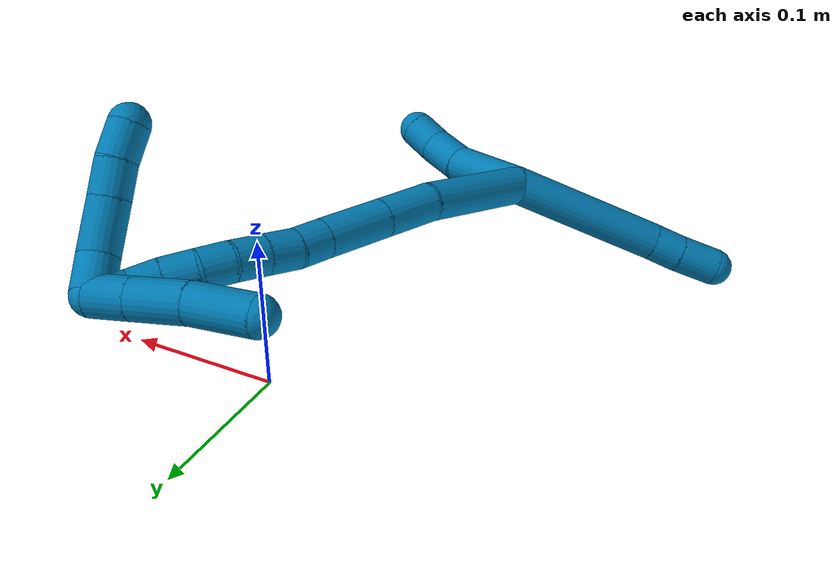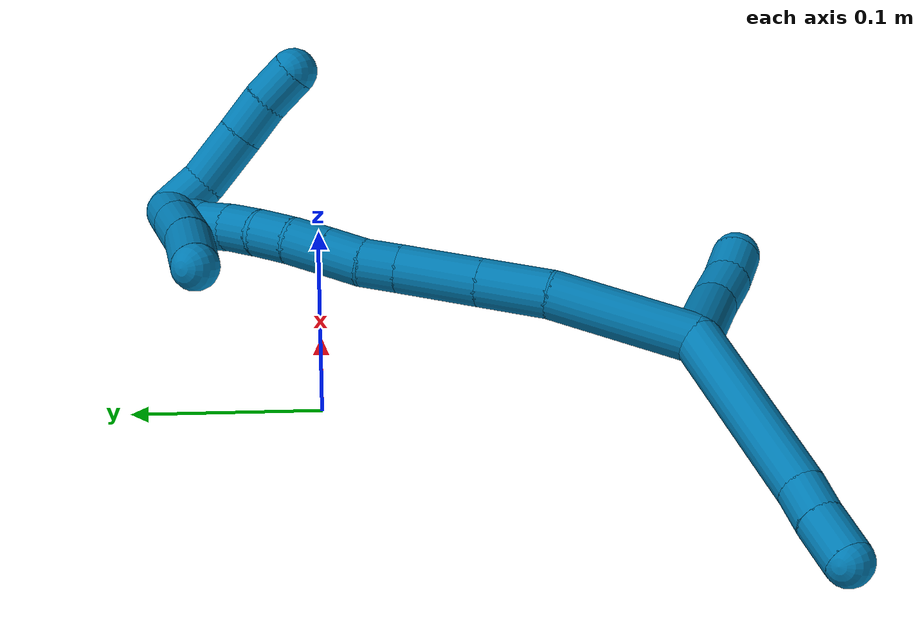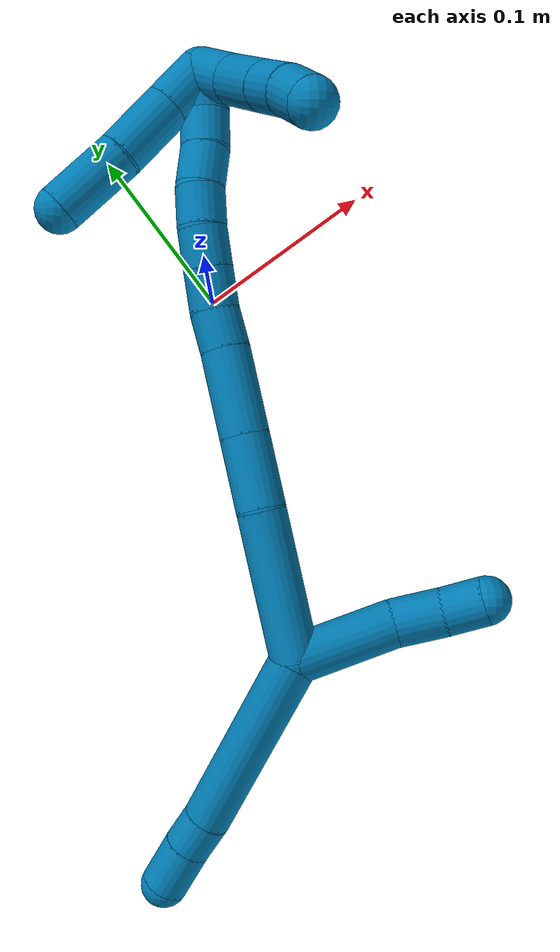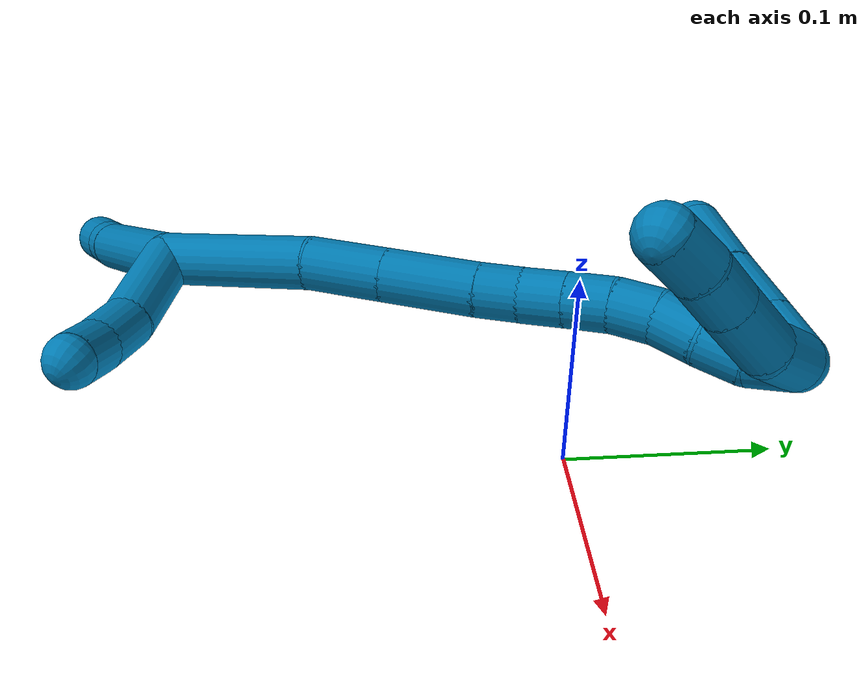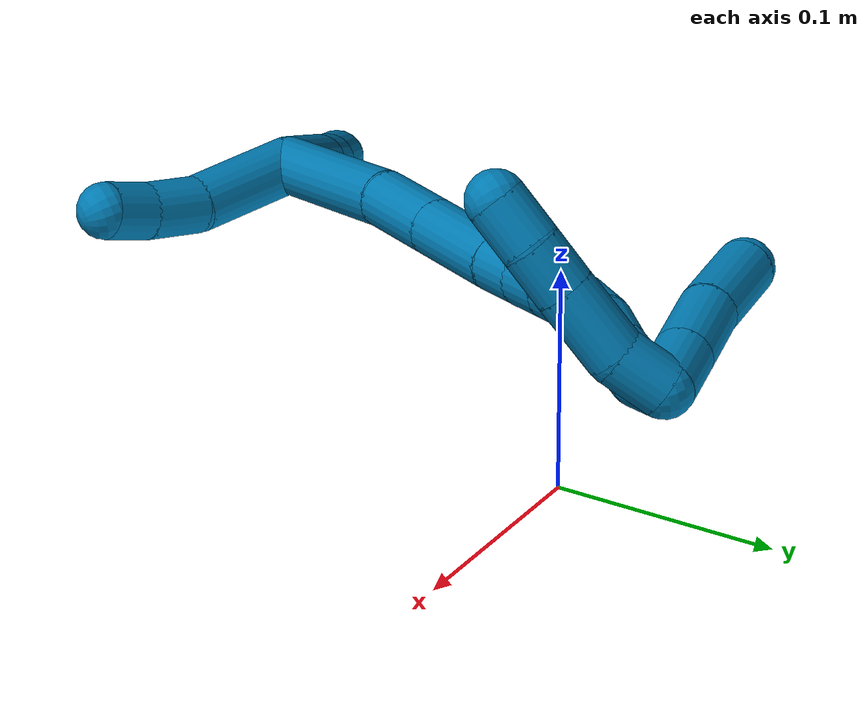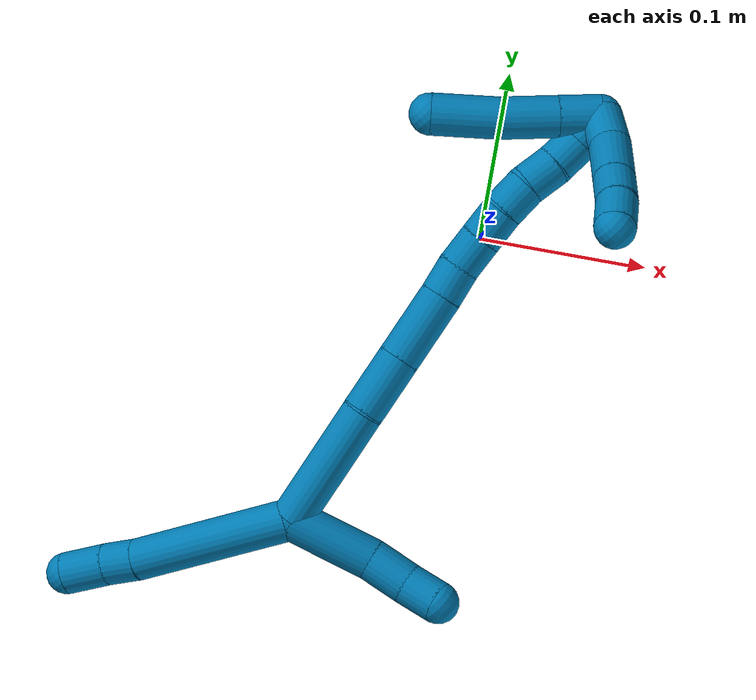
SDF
<sdf version="1.7">
 <world name="default">
  <model name="9">
   <static>0</static>
   <link name="9">
    <collision name="collision-cylinder-e_1_2_8">
     <pose>-0.037796 -0.028668 0.019702 0.968675 -0.82686 -0.453702</pose>
     <geometry><cylinder><radius>0.0125</radius><length>0.102734</length></cylinder></geometry>
     <surface>
      <friction><ode><mu>1.16</mu><mu2>1.16</mu2><slip1>0</slip1><slip2>0</slip2></ode></friction>
      <contact><ode><kp>1e+06</kp><kd>1</kd><max_vel>0</max_vel><min_depth>0.001</min_depth></ode></contact>
     </surface>
    </collision>
    <visual name="visual-cylinder-e_1_2_8">
     <pose>-0.037796 -0.028668 0.019702 0.968675 -0.82686 -0.453702</pose>
     <geometry><cylinder><radius>0.0125</radius><length>0.102734</length></cylinder></geometry>
     <material><ambient>0 0.490196 0.709804 1</ambient></material>
    </visual>
    <collision name="collision-cylinder-e_2_8_9">
     <pose>-0.082957 -0.062534 0.044068 0.839515 -0.811904 -0.379043</pose>
     <geometry><cylinder><radius>0.0125</radius><length>0.020299</length></cylinder></geometry>
     <surface>
      <friction><ode><mu>1.16</mu><mu2>1.16</mu2><slip1>0</slip1><slip2>0</slip2></ode></friction>
      <contact><ode><kp>1e+06</kp><kd>1</kd><max_vel>0</max_vel><min_depth>0.001</min_depth></ode></contact>
     </surface>
    </collision>
    <visual name="visual-cylinder-e_2_8_9">
     <pose>-0.082957 -0.062534 0.044068 0.839515 -0.811904 -0.379043</pose>
     <geometry><cylinder><radius>0.0125</radius><length>0.020299</length></cylinder></geometry>
     <material><ambient>0 0.490196 0.709804 1</ambient></material>
    </visual>
    <collision name="collision-cylinder-e_3_9_6">
     <pose>-0.09973 -0.0754 0.054605 0.917201 -0.772291 -0.396175</pose>
     <geometry><cylinder><radius>0.0125</radius><length>0.026967</length></cylinder></geometry>
     <surface>
      <friction><ode><mu>1.16</mu><mu2>1.16</mu2><slip1>0</slip1><slip2>0</slip2></ode></friction>
      <contact><ode><kp>1e+06</kp><kd>1</kd><max_vel>0</max_vel><min_depth>0.001</min_depth></ode></contact>
     </surface>
    </collision>
    <visual name="visual-cylinder-e_3_9_6">
     <pose>-0.09973 -0.0754 0.054605 0.917201 -0.772291 -0.396175</pose>
     <geometry><cylinder><radius>0.0125</radius><length>0.026967</length></cylinder></geometry>
     <material><ambient>0 0.490196 0.709804 1</ambient></material>
    </visual>
    <collision name="collision-cylinder-e_1_2_10">
     <pose>0.00643 0.005768 -0.024758 -2.9127 0.247746 -1.65063</pose>
     <geometry><cylinder><radius>0.0125</radius><length>0.052444</length></cylinder></geometry>
     <surface>
      <friction><ode><mu>1.16</mu><mu2>1.16</mu2><slip1>0</slip1><slip2>0</slip2></ode></friction>
      <contact><ode><kp>1e+06</kp><kd>1</kd><max_vel>0</max_vel><min_depth>0.001</min_depth></ode></contact>
     </surface>
    </collision>
    <visual name="visual-cylinder-e_1_2_10">
     <pose>0.00643 0.005768 -0.024758 -2.9127 0.247746 -1.65063</pose>
     <geometry><cylinder><radius>0.0125</radius><length>0.052444</length></cylinder></geometry>
     <material><ambient>0 0.490196 0.709804 1</ambient></material>
    </visual>
    <collision name="collision-cylinder-e_2_10_11">
     <pose>0.017912 0.012008 -0.061584 -3.10247 0.396209 -2.9473</pose>
     <geometry><cylinder><radius>0.0125</radius><length>0.026182</length></cylinder></geometry>
     <surface>
      <friction><ode><mu>1.16</mu><mu2>1.16</mu2><slip1>0</slip1><slip2>0</slip2></ode></friction>
      <contact><ode><kp>1e+06</kp><kd>1</kd><max_vel>0</max_vel><min_depth>0.001</min_depth></ode></contact>
     </surface>
    </collision>
    <visual name="visual-cylinder-e_2_10_11">
     <pose>0.017912 0.012008 -0.061584 -3.10247 0.396209 -2.9473</pose>
     <geometry><cylinder><radius>0.0125</radius><length>0.026182</length></cylinder></geometry>
     <material><ambient>0 0.490196 0.709804 1</ambient></material>
    </visual>
    <collision name="collision-cylinder-e_3_11_5">
     <pose>0.028553 0.012736 -0.082758 -3.11351 0.550279 -3.04219</pose>
     <geometry><cylinder><radius>0.0125</radius><length>0.021374</length></cylinder></geometry>
     <surface>
      <friction><ode><mu>1.16</mu><mu2>1.16</mu2><slip1>0</slip1><slip2>0</slip2></ode></friction>
      <contact><ode><kp>1e+06</kp><kd>1</kd><max_vel>0</max_vel><min_depth>0.001</min_depth></ode></contact>
     </surface>
    </collision>
    <visual name="visual-cylinder-e_3_11_5">
     <pose>0.028553 0.012736 -0.082758 -3.11351 0.550279 -3.04219</pose>
     <geometry><cylinder><radius>0.0125</radius><length>0.021374</length></cylinder></geometry>
     <material><ambient>0 0.490196 0.709804 1</ambient></material>
    </visual>
    <collision name="collision-cylinder-e_1_2_12">
     <pose>0.017355 0.03318 0.007572 -1.34644 0.471568 -0.378618</pose>
     <geometry><cylinder><radius>0.0125</radius><length>0.076405</length></cylinder></geometry>
     <surface>
      <friction><ode><mu>1.16</mu><mu2>1.16</mu2><slip1>0</slip1><slip2>0</slip2></ode></friction>
      <contact><ode><kp>1e+06</kp><kd>1</kd><max_vel>0</max_vel><min_depth>0.001</min_depth></ode></contact>
     </surface>
    </collision>
    <visual name="visual-cylinder-e_1_2_12">
     <pose>0.017355 0.03318 0.007572 -1.34644 0.471568 -0.378618</pose>
     <geometry><cylinder><radius>0.0125</radius><length>0.076405</length></cylinder></geometry>
     <material><ambient>0 0.490196 0.709804 1</ambient></material>
    </visual>
    <collision name="collision-cylinder-e_2_12_13">
     <pose>0.040978 0.083662 0.018303 -1.39018 0.342366 -0.286358</pose>
     <geometry><cylinder><radius>0.0125</radius><length>0.037342</length></cylinder></geometry>
     <surface>
      <friction><ode><mu>1.16</mu><mu2>1.16</mu2><slip1>0</slip1><slip2>0</slip2></ode></friction>
      <contact><ode><kp>1e+06</kp><kd>1</kd><max_vel>0</max_vel><min_depth>0.001</min_depth></ode></contact>
     </surface>
    </collision>
    <visual name="visual-cylinder-e_2_12_13">
     <pose>0.040978 0.083662 0.018303 -1.39018 0.342366 -0.286358</pose>
     <geometry><cylinder><radius>0.0125</radius><length>0.037342</length></cylinder></geometry>
     <material><ambient>0 0.490196 0.709804 1</ambient></material>
    </visual>
    <collision name="collision-cylinder-e_3_13_14">
     <pose>0.054619 0.121312 0.02518 -1.39009 0.34237 -0.286337</pose>
     <geometry><cylinder><radius>0.0125</radius><length>0.04392</length></cylinder></geometry>
     <surface>
      <friction><ode><mu>1.16</mu><mu2>1.16</mu2><slip1>0</slip1><slip2>0</slip2></ode></friction>
      <contact><ode><kp>1e+06</kp><kd>1</kd><max_vel>0</max_vel><min_depth>0.001</min_depth></ode></contact>
     </surface>
    </collision>
    <visual name="visual-cylinder-e_3_13_14">
     <pose>0.054619 0.121312 0.02518 -1.39009 0.34237 -0.286337</pose>
     <geometry><cylinder><radius>0.0125</radius><length>0.04392</length></cylinder></geometry>
     <material><ambient>0 0.490196 0.709804 1</ambient></material>
    </visual>
    <collision name="collision-cylinder-e_4_14_15">
     <pose>0.065374 0.150875 0.031083 -1.33786 0.343126 -0.272244</pose>
     <geometry><cylinder><radius>0.0125</radius><length>0.020112</length></cylinder></geometry>
     <surface>
      <friction><ode><mu>1.16</mu><mu2>1.16</mu2><slip1>0</slip1><slip2>0</slip2></ode></friction>
      <contact><ode><kp>1e+06</kp><kd>1</kd><max_vel>0</max_vel><min_depth>0.001</min_depth></ode></contact>
     </surface>
    </collision>
    <visual name="visual-cylinder-e_4_14_15">
     <pose>0.065374 0.150875 0.031083 -1.33786 0.343126 -0.272244</pose>
     <geometry><cylinder><radius>0.0125</radius><length>0.020112</length></cylinder></geometry>
     <material><ambient>0 0.490196 0.709804 1</ambient></material>
    </visual>
    <collision name="collision-cylinder-e_5_15_16">
     <pose>0.073465 0.169377 0.034589 -1.42968 0.465111 -0.405495</pose>
     <geometry><cylinder><radius>0.0125</radius><length>0.020991</length></cylinder></geometry>
     <surface>
      <friction><ode><mu>1.16</mu><mu2>1.16</mu2><slip1>0</slip1><slip2>0</slip2></ode></friction>
      <contact><ode><kp>1e+06</kp><kd>1</kd><max_vel>0</max_vel><min_depth>0.001</min_depth></ode></contact>
     </surface>
    </collision>
    <visual name="visual-cylinder-e_5_15_16">
     <pose>0.073465 0.169377 0.034589 -1.42968 0.465111 -0.405495</pose>
     <geometry><cylinder><radius>0.0125</radius><length>0.020991</length></cylinder></geometry>
     <material><ambient>0 0.490196 0.709804 1</ambient></material>
    </visual>
    <collision name="collision-cylinder-e_6_16_17">
     <pose>0.08268 0.187848 0.037125 -1.43911 0.452838 -0.398381</pose>
     <geometry><cylinder><radius>0.0125</radius><length>0.020605</length></cylinder></geometry>
     <surface>
      <friction><ode><mu>1.16</mu><mu2>1.16</mu2><slip1>0</slip1><slip2>0</slip2></ode></friction>
      <contact><ode><kp>1e+06</kp><kd>1</kd><max_vel>0</max_vel><min_depth>0.001</min_depth></ode></contact>
     </surface>
    </collision>
    <visual name="visual-cylinder-e_6_16_17">
     <pose>0.08268 0.187848 0.037125 -1.43911 0.452838 -0.398381</pose>
     <geometry><cylinder><radius>0.0125</radius><length>0.020605</length></cylinder></geometry>
     <material><ambient>0 0.490196 0.709804 1</ambient></material>
    </visual>
    <collision name="collision-cylinder-e_7_17_18">
     <pose>0.09086 0.206431 0.038378 -1.56692 0.372454 -0.371045</pose>
     <geometry><cylinder><radius>0.0125</radius><length>0.020184</length></cylinder></geometry>
     <surface>
      <friction><ode><mu>1.16</mu><mu2>1.16</mu2><slip1>0</slip1><slip2>0</slip2></ode></friction>
      <contact><ode><kp>1e+06</kp><kd>1</kd><max_vel>0</max_vel><min_depth>0.001</min_depth></ode></contact>
     </surface>
    </collision>
    <visual name="visual-cylinder-e_7_17_18">
     <pose>0.09086 0.206431 0.038378 -1.56692 0.372454 -0.371045</pose>
     <geometry><cylinder><radius>0.0125</radius><length>0.020184</length></cylinder></geometry>
     <material><ambient>0 0.490196 0.709804 1</ambient></material>
    </visual>
    <collision name="collision-cylinder-e_8_18_19">
     <pose>0.097465 0.225392 0.036536 -1.7648 0.292381 -0.354221</pose>
     <geometry><cylinder><radius>0.0125</radius><length>0.02035</length></cylinder></geometry>
     <surface>
      <friction><ode><mu>1.16</mu><mu2>1.16</mu2><slip1>0</slip1><slip2>0</slip2></ode></friction>
      <contact><ode><kp>1e+06</kp><kd>1</kd><max_vel>0</max_vel><min_depth>0.001</min_depth></ode></contact>
     </surface>
    </collision>
    <visual name="visual-cylinder-e_8_18_19">
     <pose>0.097465 0.225392 0.036536 -1.7648 0.292381 -0.354221</pose>
     <geometry><cylinder><radius>0.0125</radius><length>0.02035</length></cylinder></geometry>
     <material><ambient>0 0.490196 0.709804 1</ambient></material>
    </visual>
    <collision name="collision-cylinder-e_9_19_20">
     <pose>0.10277 0.244675 0.034042 -1.63394 0.238885 -0.254304</pose>
     <geometry><cylinder><radius>0.0125</radius><length>0.020053</length></cylinder></geometry>
     <surface>
      <friction><ode><mu>1.16</mu><mu2>1.16</mu2><slip1>0</slip1><slip2>0</slip2></ode></friction>
      <contact><ode><kp>1e+06</kp><kd>1</kd><max_vel>0</max_vel><min_depth>0.001</min_depth></ode></contact>
     </surface>
    </collision>
    <visual name="visual-cylinder-e_9_19_20">
     <pose>0.10277 0.244675 0.034042 -1.63394 0.238885 -0.254304</pose>
     <geometry><cylinder><radius>0.0125</radius><length>0.020053</length></cylinder></geometry>
     <material><ambient>0 0.490196 0.709804 1</ambient></material>
    </visual>
    <collision name="collision-cylinder-e_10_20_1">
     <pose>0.110337 0.262925 0.034246 -1.4751 0.545028 -0.497338</pose>
     <geometry><cylinder><radius>0.0125</radius><length>0.020037</length></cylinder></geometry>
     <surface>
      <friction><ode><mu>1.16</mu><mu2>1.16</mu2><slip1>0</slip1><slip2>0</slip2></ode></friction>
      <contact><ode><kp>1e+06</kp><kd>1</kd><max_vel>0</max_vel><min_depth>0.001</min_depth></ode></contact>
     </surface>
    </collision>
    <visual name="visual-cylinder-e_10_20_1">
     <pose>0.110337 0.262925 0.034246 -1.4751 0.545028 -0.497338</pose>
     <geometry><cylinder><radius>0.0125</radius><length>0.020037</length></cylinder></geometry>
     <material><ambient>0 0.490196 0.709804 1</ambient></material>
    </visual>
    <collision name="collision-cylinder-e_1_1_21">
     <pose>0.121391 0.263815 0.02853 2.27861 0.527854 1.06149</pose>
     <geometry><cylinder><radius>0.0125</radius><length>0.02327</length></cylinder></geometry>
     <surface>
      <friction><ode><mu>1.16</mu><mu2>1.16</mu2><slip1>0</slip1><slip2>0</slip2></ode></friction>
      <contact><ode><kp>1e+06</kp><kd>1</kd><max_vel>0</max_vel><min_depth>0.001</min_depth></ode></contact>
     </surface>
    </collision>
    <visual name="visual-cylinder-e_1_1_21">
     <pose>0.121391 0.263815 0.02853 2.27861 0.527854 1.06149</pose>
     <geometry><cylinder><radius>0.0125</radius><length>0.02327</length></cylinder></geometry>
     <material><ambient>0 0.490196 0.709804 1</ambient></material>
    </visual>
    <collision name="collision-cylinder-e_2_21_22">
     <pose>0.137741 0.244661 0.017106 1.97217 0.697715 1.00494</pose>
     <geometry><cylinder><radius>0.0125</radius><length>0.032655</length></cylinder></geometry>
     <surface>
      <friction><ode><mu>1.16</mu><mu2>1.16</mu2><slip1>0</slip1><slip2>0</slip2></ode></friction>
      <contact><ode><kp>1e+06</kp><kd>1</kd><max_vel>0</max_vel><min_depth>0.001</min_depth></ode></contact>
     </surface>
    </collision>
    <visual name="visual-cylinder-e_2_21_22">
     <pose>0.137741 0.244661 0.017106 1.97217 0.697715 1.00494</pose>
     <geometry><cylinder><radius>0.0125</radius><length>0.032655</length></cylinder></geometry>
     <material><ambient>0 0.490196 0.709804 1</ambient></material>
    </visual>
    <collision name="collision-cylinder-e_3_22_23">
     <pose>0.155393 0.225435 0.009088 1.95646 0.710786 1.00762</pose>
     <geometry><cylinder><radius>0.0125</radius><length>0.021955</length></cylinder></geometry>
     <surface>
      <friction><ode><mu>1.16</mu><mu2>1.16</mu2><slip1>0</slip1><slip2>0</slip2></ode></friction>
      <contact><ode><kp>1e+06</kp><kd>1</kd><max_vel>0</max_vel><min_depth>0.001</min_depth></ode></contact>
     </surface>
    </collision>
    <visual name="visual-cylinder-e_3_22_23">
     <pose>0.155393 0.225435 0.009088 1.95646 0.710786 1.00762</pose>
     <geometry><cylinder><radius>0.0125</radius><length>0.021955</length></cylinder></geometry>
     <material><ambient>0 0.490196 0.709804 1</ambient></material>
    </visual>
    <collision name="collision-cylinder-e_4_23_4">
     <pose>0.168682 0.208939 0.003211 1.87385 0.587094 0.780299</pose>
     <geometry><cylinder><radius>0.0125</radius><length>0.02212</length></cylinder></geometry>
     <surface>
      <friction><ode><mu>1.16</mu><mu2>1.16</mu2><slip1>0</slip1><slip2>0</slip2></ode></friction>
      <contact><ode><kp>1e+06</kp><kd>1</kd><max_vel>0</max_vel><min_depth>0.001</min_depth></ode></contact>
     </surface>
    </collision>
    <visual name="visual-cylinder-e_4_23_4">
     <pose>0.168682 0.208939 0.003211 1.87385 0.587094 0.780299</pose>
     <geometry><cylinder><radius>0.0125</radius><length>0.02212</length></cylinder></geometry>
     <material><ambient>0 0.490196 0.709804 1</ambient></material>
    </visual>
    <collision name="collision-cylinder-e_1_1_24">
     <pose>0.111686 0.26332 0.043948 0.74135 -0.308992 -0.120904</pose>
     <geometry><cylinder><radius>0.0125</radius><length>0.025285</length></cylinder></geometry>
     <surface>
      <friction><ode><mu>1.16</mu><mu2>1.16</mu2><slip1>0</slip1><slip2>0</slip2></ode></friction>
      <contact><ode><kp>1e+06</kp><kd>1</kd><max_vel>0</max_vel><min_depth>0.001</min_depth></ode></contact>
     </surface>
    </collision>
    <visual name="visual-cylinder-e_1_1_24">
     <pose>0.111686 0.26332 0.043948 0.74135 -0.308992 -0.120904</pose>
     <geometry><cylinder><radius>0.0125</radius><length>0.025285</length></cylinder></geometry>
     <material><ambient>0 0.490196 0.709804 1</ambient></material>
    </visual>
    <collision name="collision-cylinder-e_2_24_25">
     <pose>0.102665 0.244145 0.064827 0.743968 -0.307438 -0.120753</pose>
     <geometry><cylinder><radius>0.0125</radius><length>0.034214</length></cylinder></geometry>
     <surface>
      <friction><ode><mu>1.16</mu><mu2>1.16</mu2><slip1>0</slip1><slip2>0</slip2></ode></friction>
      <contact><ode><kp>1e+06</kp><kd>1</kd><max_vel>0</max_vel><min_depth>0.001</min_depth></ode></contact>
     </surface>
    </collision>
    <visual name="visual-cylinder-e_2_24_25">
     <pose>0.102665 0.244145 0.064827 0.743968 -0.307438 -0.120753</pose>
     <geometry><cylinder><radius>0.0125</radius><length>0.034214</length></cylinder></geometry>
     <material><ambient>0 0.490196 0.709804 1</ambient></material>
    </visual>
    <collision name="collision-cylinder-e_3_25_3">
     <pose>0.090417 0.22177 0.092045 0.640006 -0.356681 -0.119329</pose>
     <geometry><cylinder><radius>0.0125</radius><length>0.040501</length></cylinder></geometry>
     <surface>
      <friction><ode><mu>1.16</mu><mu2>1.16</mu2><slip1>0</slip1><slip2>0</slip2></ode></friction>
      <contact><ode><kp>1e+06</kp><kd>1</kd><max_vel>0</max_vel><min_depth>0.001</min_depth></ode></contact>
     </surface>
    </collision>
    <visual name="visual-cylinder-e_3_25_3">
     <pose>0.090417 0.22177 0.092045 0.640006 -0.356681 -0.119329</pose>
     <geometry><cylinder><radius>0.0125</radius><length>0.040501</length></cylinder></geometry>
     <material><ambient>0 0.490196 0.709804 1</ambient></material>
    </visual>
    <collision name="collision-sphere-3">
     <pose>0.083346 0.210438 0.107266 0 -0 0</pose>
     <geometry><sphere><radius>0.0125</radius></sphere></geometry>
     <surface>
      <friction><ode><mu>1.16</mu><mu2>1.16</mu2><slip1>0</slip1><slip2>0</slip2></ode></friction>
      <contact><ode><kp>1e+06</kp><kd>1</kd><max_vel>0</max_vel><min_depth>0.001</min_depth></ode></contact>
     </surface>
    </collision>
    <visual name="visual-sphere-3">
     <pose>0.083346 0.210438 0.107266 0 -0 0</pose>
     <geometry><sphere><radius>0.0125</radius></sphere></geometry>
     <material><ambient>0 0.490196 0.709804 1</ambient></material>
    </visual>
    <collision name="collision-sphere-25">
     <pose>0.097488 0.233103 0.076824 0 -0 0</pose>
     <geometry><sphere><radius>0.0125</radius></sphere></geometry>
     <surface>
      <friction><ode><mu>1.16</mu><mu2>1.16</mu2><slip1>0</slip1><slip2>0</slip2></ode></friction>
      <contact><ode><kp>1e+06</kp><kd>1</kd><max_vel>0</max_vel><min_depth>0.001</min_depth></ode></contact>
     </surface>
    </collision>
    <visual name="visual-sphere-25">
     <pose>0.097488 0.233103 0.076824 0 -0 0</pose>
     <geometry><sphere><radius>0.0125</radius></sphere></geometry>
     <material><ambient>0 0.490196 0.709804 1</ambient></material>
    </visual>
    <collision name="collision-sphere-24">
     <pose>0.107842 0.255187 0.05283 0 -0 0</pose>
     <geometry><sphere><radius>0.0125</radius></sphere></geometry>
     <surface>
      <friction><ode><mu>1.16</mu><mu2>1.16</mu2><slip1>0</slip1><slip2>0</slip2></ode></friction>
      <contact><ode><kp>1e+06</kp><kd>1</kd><max_vel>0</max_vel><min_depth>0.001</min_depth></ode></contact>
     </surface>
    </collision>
    <visual name="visual-sphere-24">
     <pose>0.107842 0.255187 0.05283 0 -0 0</pose>
     <geometry><sphere><radius>0.0125</radius></sphere></geometry>
     <material><ambient>0 0.490196 0.709804 1</ambient></material>
    </visual>
    <collision name="collision-sphere-4">
     <pose>0.174809 0.20015 0.000463 0 -0 0</pose>
     <geometry><sphere><radius>0.0125</radius></sphere></geometry>
     <surface>
      <friction><ode><mu>1.16</mu><mu2>1.16</mu2><slip1>0</slip1><slip2>0</slip2></ode></friction>
      <contact><ode><kp>1e+06</kp><kd>1</kd><max_vel>0</max_vel><min_depth>0.001</min_depth></ode></contact>
     </surface>
    </collision>
    <visual name="visual-sphere-4">
     <pose>0.174809 0.20015 0.000463 0 -0 0</pose>
     <geometry><sphere><radius>0.0125</radius></sphere></geometry>
     <material><ambient>0 0.490196 0.709804 1</ambient></material>
    </visual>
    <collision name="collision-sphere-23">
     <pose>0.162555 0.217727 0.005959 0 -0 0</pose>
     <geometry><sphere><radius>0.0125</radius></sphere></geometry>
     <surface>
      <friction><ode><mu>1.16</mu><mu2>1.16</mu2><slip1>0</slip1><slip2>0</slip2></ode></friction>
      <contact><ode><kp>1e+06</kp><kd>1</kd><max_vel>0</max_vel><min_depth>0.001</min_depth></ode></contact>
     </surface>
    </collision>
    <visual name="visual-sphere-23">
     <pose>0.162555 0.217727 0.005959 0 -0 0</pose>
     <geometry><sphere><radius>0.0125</radius></sphere></geometry>
     <material><ambient>0 0.490196 0.709804 1</ambient></material>
    </visual>
    <collision name="collision-sphere-22">
     <pose>0.148231 0.233144 0.012218 0 -0 0</pose>
     <geometry><sphere><radius>0.0125</radius></sphere></geometry>
     <surface>
      <friction><ode><mu>1.16</mu><mu2>1.16</mu2><slip1>0</slip1><slip2>0</slip2></ode></friction>
      <contact><ode><kp>1e+06</kp><kd>1</kd><max_vel>0</max_vel><min_depth>0.001</min_depth></ode></contact>
     </surface>
    </collision>
    <visual name="visual-sphere-22">
     <pose>0.148231 0.233144 0.012218 0 -0 0</pose>
     <geometry><sphere><radius>0.0125</radius></sphere></geometry>
     <material><ambient>0 0.490196 0.709804 1</ambient></material>
    </visual>
    <collision name="collision-sphere-21">
     <pose>0.127252 0.256179 0.021994 0 -0 0</pose>
     <geometry><sphere><radius>0.0125</radius></sphere></geometry>
     <surface>
      <friction><ode><mu>1.16</mu><mu2>1.16</mu2><slip1>0</slip1><slip2>0</slip2></ode></friction>
      <contact><ode><kp>1e+06</kp><kd>1</kd><max_vel>0</max_vel><min_depth>0.001</min_depth></ode></contact>
     </surface>
    </collision>
    <visual name="visual-sphere-21">
     <pose>0.127252 0.256179 0.021994 0 -0 0</pose>
     <geometry><sphere><radius>0.0125</radius></sphere></geometry>
     <material><ambient>0 0.490196 0.709804 1</ambient></material>
    </visual>
    <collision name="collision-sphere-1">
     <pose>0.115531 0.271452 0.035065 0 -0 0</pose>
     <geometry><sphere><radius>0.0125</radius></sphere></geometry>
     <surface>
      <friction><ode><mu>1.16</mu><mu2>1.16</mu2><slip1>0</slip1><slip2>0</slip2></ode></friction>
      <contact><ode><kp>1e+06</kp><kd>1</kd><max_vel>0</max_vel><min_depth>0.001</min_depth></ode></contact>
     </surface>
    </collision>
    <visual name="visual-sphere-1">
     <pose>0.115531 0.271452 0.035065 0 -0 0</pose>
     <geometry><sphere><radius>0.0125</radius></sphere></geometry>
     <material><ambient>0 0.490196 0.709804 1</ambient></material>
    </visual>
    <collision name="collision-sphere-11">
     <pose>0.022965 0.012481 -0.073652 0 -0 0</pose>
     <geometry><sphere><radius>0.0125</radius></sphere></geometry>
     <surface>
      <friction><ode><mu>1.16</mu><mu2>1.16</mu2><slip1>0</slip1><slip2>0</slip2></ode></friction>
      <contact><ode><kp>1e+06</kp><kd>1</kd><max_vel>0</max_vel><min_depth>0.001</min_depth></ode></contact>
     </surface>
    </collision>
    <visual name="visual-sphere-11">
     <pose>0.022965 0.012481 -0.073652 0 -0 0</pose>
     <geometry><sphere><radius>0.0125</radius></sphere></geometry>
     <material><ambient>0 0.490196 0.709804 1</ambient></material>
    </visual>
    <collision name="collision-sphere-10">
     <pose>0.01286 0.011536 -0.049516 0 -0 0</pose>
     <geometry><sphere><radius>0.0125</radius></sphere></geometry>
     <surface>
      <friction><ode><mu>1.16</mu><mu2>1.16</mu2><slip1>0</slip1><slip2>0</slip2></ode></friction>
      <contact><ode><kp>1e+06</kp><kd>1</kd><max_vel>0</max_vel><min_depth>0.001</min_depth></ode></contact>
     </surface>
    </collision>
    <visual name="visual-sphere-10">
     <pose>0.01286 0.011536 -0.049516 0 -0 0</pose>
     <geometry><sphere><radius>0.0125</radius></sphere></geometry>
     <material><ambient>0 0.490196 0.709804 1</ambient></material>
    </visual>
    <collision name="collision-sphere-6">
     <pose>-0.109138 -0.083068 0.060478 0 -0 0</pose>
     <geometry><sphere><radius>0.0125</radius></sphere></geometry>
     <surface>
      <friction><ode><mu>1.16</mu><mu2>1.16</mu2><slip1>0</slip1><slip2>0</slip2></ode></friction>
      <contact><ode><kp>1e+06</kp><kd>1</kd><max_vel>0</max_vel><min_depth>0.001</min_depth></ode></contact>
     </surface>
    </collision>
    <visual name="visual-sphere-6">
     <pose>-0.109138 -0.083068 0.060478 0 -0 0</pose>
     <geometry><sphere><radius>0.0125</radius></sphere></geometry>
     <material><ambient>0 0.490196 0.709804 1</ambient></material>
    </visual>
    <collision name="collision-sphere-9">
     <pose>-0.090321 -0.067732 0.048732 0 -0 0</pose>
     <geometry><sphere><radius>0.0125</radius></sphere></geometry>
     <surface>
      <friction><ode><mu>1.16</mu><mu2>1.16</mu2><slip1>0</slip1><slip2>0</slip2></ode></friction>
      <contact><ode><kp>1e+06</kp><kd>1</kd><max_vel>0</max_vel><min_depth>0.001</min_depth></ode></contact>
     </surface>
    </collision>
    <visual name="visual-sphere-9">
     <pose>-0.090321 -0.067732 0.048732 0 -0 0</pose>
     <geometry><sphere><radius>0.0125</radius></sphere></geometry>
     <material><ambient>0 0.490196 0.709804 1</ambient></material>
    </visual>
    <collision name="collision-sphere-2">
     <geometry><sphere><radius>0.0125</radius></sphere></geometry>
     <surface>
      <friction><ode><mu>1.16</mu><mu2>1.16</mu2><slip1>0</slip1><slip2>0</slip2></ode></friction>
      <contact><ode><kp>1e+06</kp><kd>1</kd><max_vel>0</max_vel><min_depth>0.001</min_depth></ode></contact>
     </surface>
    </collision>
    <visual name="visual-sphere-2">
     <geometry><sphere><radius>0.0125</radius></sphere></geometry>
     <material><ambient>0 0.490196 0.709804 1</ambient></material>
    </visual>
    <collision name="collision-sphere-19">
     <pose>0.100398 0.234952 0.034657 0 -0 0</pose>
     <geometry><sphere><radius>0.0125</radius></sphere></geometry>
     <surface>
      <friction><ode><mu>1.16</mu><mu2>1.16</mu2><slip1>0</slip1><slip2>0</slip2></ode></friction>
      <contact><ode><kp>1e+06</kp><kd>1</kd><max_vel>0</max_vel><min_depth>0.001</min_depth></ode></contact>
     </surface>
    </collision>
    <visual name="visual-sphere-19">
     <pose>0.100398 0.234952 0.034657 0 -0 0</pose>
     <geometry><sphere><radius>0.0125</radius></sphere></geometry>
     <material><ambient>0 0.490196 0.709804 1</ambient></material>
    </visual>
    <collision name="collision-sphere-8">
     <pose>-0.075593 -0.057336 0.039404 0 -0 0</pose>
     <geometry><sphere><radius>0.0125</radius></sphere></geometry>
     <surface>
      <friction><ode><mu>1.16</mu><mu2>1.16</mu2><slip1>0</slip1><slip2>0</slip2></ode></friction>
      <contact><ode><kp>1e+06</kp><kd>1</kd><max_vel>0</max_vel><min_depth>0.001</min_depth></ode></contact>
     </surface>
    </collision>
    <visual name="visual-sphere-8">
     <pose>-0.075593 -0.057336 0.039404 0 -0 0</pose>
     <geometry><sphere><radius>0.0125</radius></sphere></geometry>
     <material><ambient>0 0.490196 0.709804 1</ambient></material>
    </visual>
    <collision name="collision-sphere-5">
     <pose>0.034142 0.012992 -0.091863 0 -0 0</pose>
     <geometry><sphere><radius>0.0125</radius></sphere></geometry>
     <surface>
      <friction><ode><mu>1.16</mu><mu2>1.16</mu2><slip1>0</slip1><slip2>0</slip2></ode></friction>
      <contact><ode><kp>1e+06</kp><kd>1</kd><max_vel>0</max_vel><min_depth>0.001</min_depth></ode></contact>
     </surface>
    </collision>
    <visual name="visual-sphere-5">
     <pose>0.034142 0.012992 -0.091863 0 -0 0</pose>
     <geometry><sphere><radius>0.0125</radius></sphere></geometry>
     <material><ambient>0 0.490196 0.709804 1</ambient></material>
    </visual>
    <collision name="collision-sphere-12">
     <pose>0.03471 0.06636 0.015143 0 -0 0</pose>
     <geometry><sphere><radius>0.0125</radius></sphere></geometry>
     <surface>
      <friction><ode><mu>1.16</mu><mu2>1.16</mu2><slip1>0</slip1><slip2>0</slip2></ode></friction>
      <contact><ode><kp>1e+06</kp><kd>1</kd><max_vel>0</max_vel><min_depth>0.001</min_depth></ode></contact>
     </surface>
    </collision>
    <visual name="visual-sphere-12">
     <pose>0.03471 0.06636 0.015143 0 -0 0</pose>
     <geometry><sphere><radius>0.0125</radius></sphere></geometry>
     <material><ambient>0 0.490196 0.709804 1</ambient></material>
    </visual>
    <collision name="collision-sphere-13">
     <pose>0.047246 0.100963 0.021462 0 -0 0</pose>
     <geometry><sphere><radius>0.0125</radius></sphere></geometry>
     <surface>
      <friction><ode><mu>1.16</mu><mu2>1.16</mu2><slip1>0</slip1><slip2>0</slip2></ode></friction>
      <contact><ode><kp>1e+06</kp><kd>1</kd><max_vel>0</max_vel><min_depth>0.001</min_depth></ode></contact>
     </surface>
    </collision>
    <visual name="visual-sphere-13">
     <pose>0.047246 0.100963 0.021462 0 -0 0</pose>
     <geometry><sphere><radius>0.0125</radius></sphere></geometry>
     <material><ambient>0 0.490196 0.709804 1</ambient></material>
    </visual>
    <collision name="collision-sphere-14">
     <pose>0.061991 0.141661 0.028897 0 -0 0</pose>
     <geometry><sphere><radius>0.0125</radius></sphere></geometry>
     <surface>
      <friction><ode><mu>1.16</mu><mu2>1.16</mu2><slip1>0</slip1><slip2>0</slip2></ode></friction>
      <contact><ode><kp>1e+06</kp><kd>1</kd><max_vel>0</max_vel><min_depth>0.001</min_depth></ode></contact>
     </surface>
    </collision>
    <visual name="visual-sphere-14">
     <pose>0.061991 0.141661 0.028897 0 -0 0</pose>
     <geometry><sphere><radius>0.0125</radius></sphere></geometry>
     <material><ambient>0 0.490196 0.709804 1</ambient></material>
    </visual>
    <collision name="collision-sphere-15">
     <pose>0.068758 0.160089 0.033269 0 -0 0</pose>
     <geometry><sphere><radius>0.0125</radius></sphere></geometry>
     <surface>
      <friction><ode><mu>1.16</mu><mu2>1.16</mu2><slip1>0</slip1><slip2>0</slip2></ode></friction>
      <contact><ode><kp>1e+06</kp><kd>1</kd><max_vel>0</max_vel><min_depth>0.001</min_depth></ode></contact>
     </surface>
    </collision>
    <visual name="visual-sphere-15">
     <pose>0.068758 0.160089 0.033269 0 -0 0</pose>
     <geometry><sphere><radius>0.0125</radius></sphere></geometry>
     <material><ambient>0 0.490196 0.709804 1</ambient></material>
    </visual>
    <collision name="collision-sphere-16">
     <pose>0.078173 0.178664 0.035908 0 -0 0</pose>
     <geometry><sphere><radius>0.0125</radius></sphere></geometry>
     <surface>
      <friction><ode><mu>1.16</mu><mu2>1.16</mu2><slip1>0</slip1><slip2>0</slip2></ode></friction>
      <contact><ode><kp>1e+06</kp><kd>1</kd><max_vel>0</max_vel><min_depth>0.001</min_depth></ode></contact>
     </surface>
    </collision>
    <visual name="visual-sphere-16">
     <pose>0.078173 0.178664 0.035908 0 -0 0</pose>
     <geometry><sphere><radius>0.0125</radius></sphere></geometry>
     <material><ambient>0 0.490196 0.709804 1</ambient></material>
    </visual>
    <collision name="collision-sphere-17">
     <pose>0.087187 0.197031 0.038341 0 -0 0</pose>
     <geometry><sphere><radius>0.0125</radius></sphere></geometry>
     <surface>
      <friction><ode><mu>1.16</mu><mu2>1.16</mu2><slip1>0</slip1><slip2>0</slip2></ode></friction>
      <contact><ode><kp>1e+06</kp><kd>1</kd><max_vel>0</max_vel><min_depth>0.001</min_depth></ode></contact>
     </surface>
    </collision>
    <visual name="visual-sphere-17">
     <pose>0.087187 0.197031 0.038341 0 -0 0</pose>
     <geometry><sphere><radius>0.0125</radius></sphere></geometry>
     <material><ambient>0 0.490196 0.709804 1</ambient></material>
    </visual>
    <collision name="collision-sphere-18">
     <pose>0.094532 0.215831 0.038414 0 -0 0</pose>
     <geometry><sphere><radius>0.0125</radius></sphere></geometry>
     <surface>
      <friction><ode><mu>1.16</mu><mu2>1.16</mu2><slip1>0</slip1><slip2>0</slip2></ode></friction>
      <contact><ode><kp>1e+06</kp><kd>1</kd><max_vel>0</max_vel><min_depth>0.001</min_depth></ode></contact>
     </surface>
    </collision>
    <visual name="visual-sphere-18">
     <pose>0.094532 0.215831 0.038414 0 -0 0</pose>
     <geometry><sphere><radius>0.0125</radius></sphere></geometry>
     <material><ambient>0 0.490196 0.709804 1</ambient></material>
    </visual>
    <collision name="collision-sphere-20">
     <pose>0.105143 0.254397 0.033428 0 -0 0</pose>
     <geometry><sphere><radius>0.0125</radius></sphere></geometry>
     <surface>
      <friction><ode><mu>1.16</mu><mu2>1.16</mu2><slip1>0</slip1><slip2>0</slip2></ode></friction>
      <contact><ode><kp>1e+06</kp><kd>1</kd><max_vel>0</max_vel><min_depth>0.001</min_depth></ode></contact>
     </surface>
    </collision>
    <visual name="visual-sphere-20">
     <pose>0.105143 0.254397 0.033428 0 -0 0</pose>
     <geometry><sphere><radius>0.0125</radius></sphere></geometry>
     <material><ambient>0 0.490196 0.709804 1</ambient></material>
    </visual>
    <inertial>
     <pose>0.047372 0.11028 0.020844 0 -0 0</pose>
     <mass>0.75</mass>
     <inertia><ixx>7.5e-05</ixx><ixy>0</ixy><ixz>0</ixz><iyy>6.3e-05</iyy><iyz>0</iyz><izz>5.1e-05</izz></inertia>
    </inertial>
   </link>
   <pose>-0.081072 -0.184522 0.070847 -1.00641 -1.15935 0.460623</pose>
  </model>
 </world>
</sdf>
